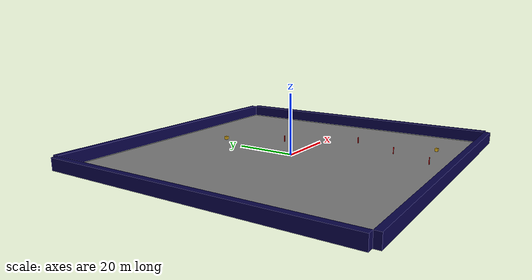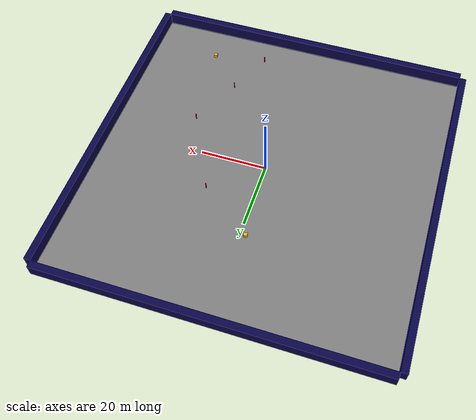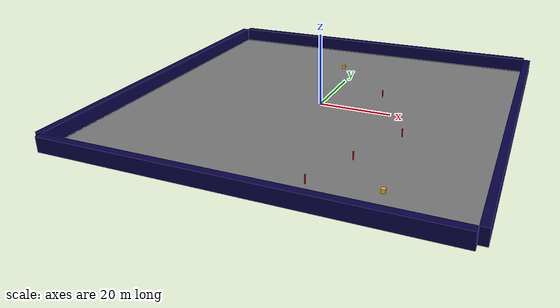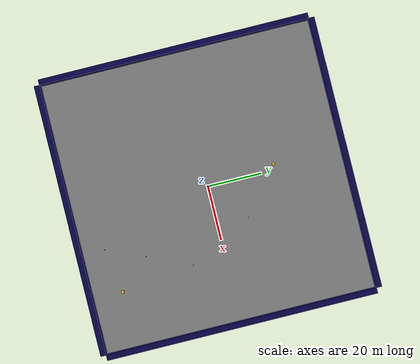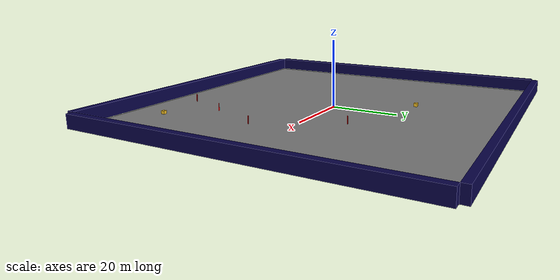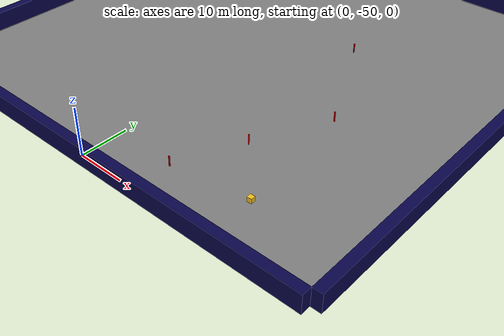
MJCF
<mujoco model="unnamed_model">
  <default>
    <default class="/" />
    <default class="border/" />
    <default class="border_1/" />
    <default class="border_2/" />
    <default class="border_3/" />
    <default class="placeholder/" />
    <default class="agent/" />
    <default class="tree0/" />
    <default class="tree1/" />
    <default class="tree2/" />
    <default class="tree3/" />
  </default>
  <worldbody>
    <body name="border/">
      <body name="border/border" pos="0 51 2">
        <geom name="border/border_geom" class="border/" type="box" size="50 1 2" rgba="0.035000000000000003 0.016 0.28999999999999998 1" />
      </body>
    </body>
    <body name="border_1/">
      <body name="border_1/border" pos="0 -51 2">
        <geom name="border_1/border_geom" class="border_1/" type="box" size="50 1 2" rgba="0.035000000000000003 0.016 0.28999999999999998 1" />
      </body>
    </body>
    <body name="border_2/">
      <body name="border_2/border" pos="51 0 2">
        <geom name="border_2/border_geom" class="border_2/" type="box" size="1 50 2" rgba="0.035000000000000003 0.016 0.28999999999999998 1" />
      </body>
    </body>
    <body name="border_3/">
      <body name="border_3/border" pos="-51 0 2">
        <geom name="border_3/border_geom" class="border_3/" type="box" size="1 50 2" rgba="0.035000000000000003 0.016 0.28999999999999998 1" />
      </body>
    </body>
    <body euler="0 0 -84.98771800557229" name="placeholder/">
      <joint name="placeholder/boxagent_freeJoint/" class="/" type="free" />
      <body name="placeholder/placeholder" pos="-25 0 3" euler="0 0 0">
        <geom name="placeholder/boxagent_geom" class="placeholder/" type="box" size="0.5 0.5 0.5" rgba="0.94899999999999995 0.74509999999999998 0.1333 1" euler="0 0 0" />
      </body>
    </body>
    <body euler="0 0 -176.63821060653646" name="agent/">
      <joint name="agent/boxagent_freeJoint/" class="/" type="free" />
      <body name="agent/agent" pos="-27.344349999999999 40.834699999999998 0.5" euler="0 0 0">
        <geom name="agent/boxagent_geom" class="agent/" type="box" size="0.5 0.5 0.5" rgba="0.94899999999999995 0.74509999999999998 0.1333 1" euler="0 0 0" />
      </body>
    </body>
    <body name="tree0/">
      <body name="tree0/tree0" pos="26.462350000000001 -11.916600000000003 0.10000000000000001" euler="0 0 75.721331631964631">
        <geom name="tree0/tree_geom" class="tree0/" type="box" size="0.10000000000000001 0.10000000000000001 2" rgba="1 0 0 1" />
      </body>
    </body>
    <body name="tree1/">
      <body name="tree1/tree1" pos="14.496700000000001 11.622600000000006 0.10000000000000001" euler="0 0 -1.4234983403585773">
        <geom name="tree1/tree_geom" class="tree1/" type="box" size="0.10000000000000001 0.10000000000000001 2" rgba="1 0 0 1" />
      </body>
    </body>
    <body name="tree2/">
      <body name="tree2/tree2" pos="13.322749999999999 -41.672499999999999 0.10000000000000001" euler="0 0 173.06363201178573">
        <geom name="tree2/tree_geom" class="tree2/" type="box" size="0.10000000000000001 0.10000000000000001 2" rgba="1 0 0 1" />
      </body>
    </body>
    <body name="tree3/">
      <body name="tree3/tree3" pos="19.2818 -27.876199999999997 0.10000000000000001" euler="0 0 48.486702846838114">
        <geom name="tree3/tree_geom" class="tree3/" type="box" size="0.10000000000000001 0.10000000000000001 2" rgba="1 0 0 1" />
      </body>
    </body>
    <geom name="base_plane" class="/" type="plane" size="50 50 0.10000000000000001" />
  </worldbody>
</mujoco>
